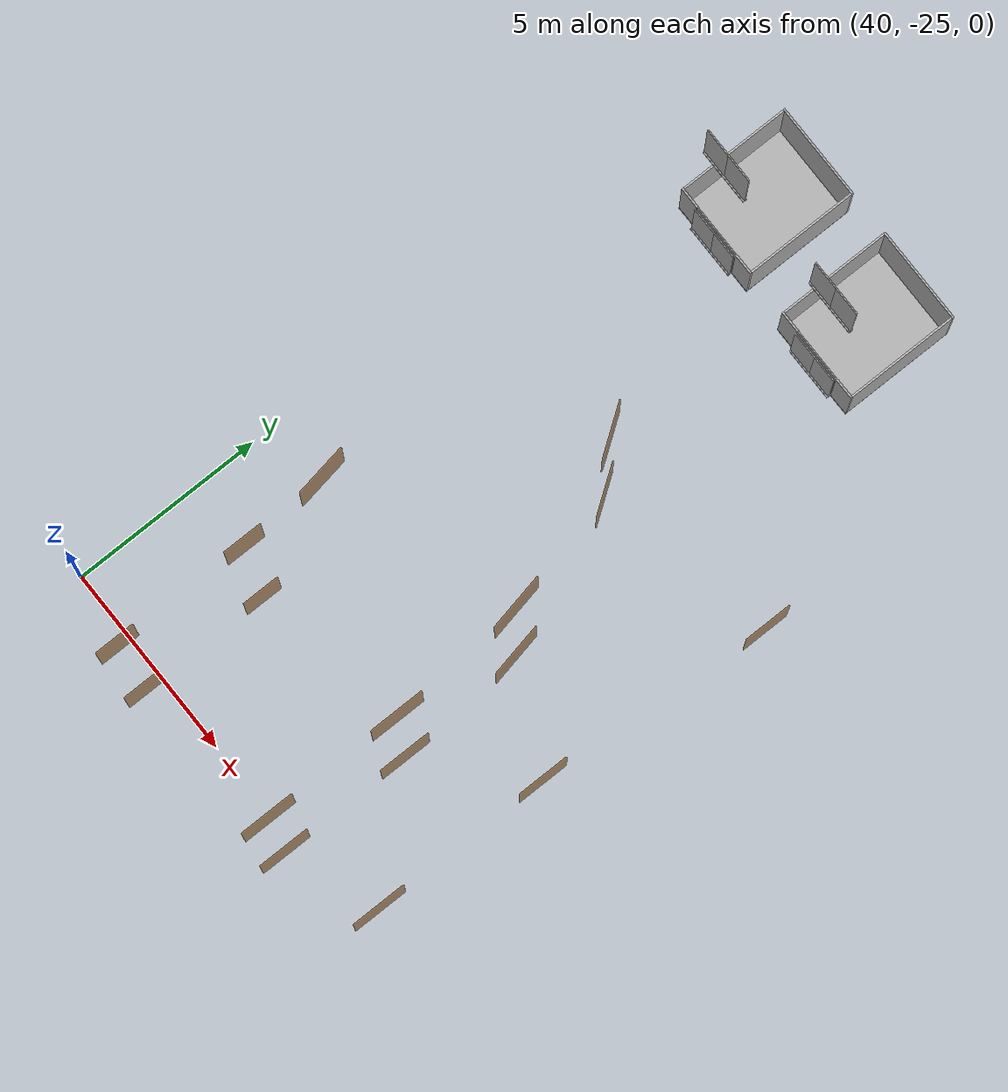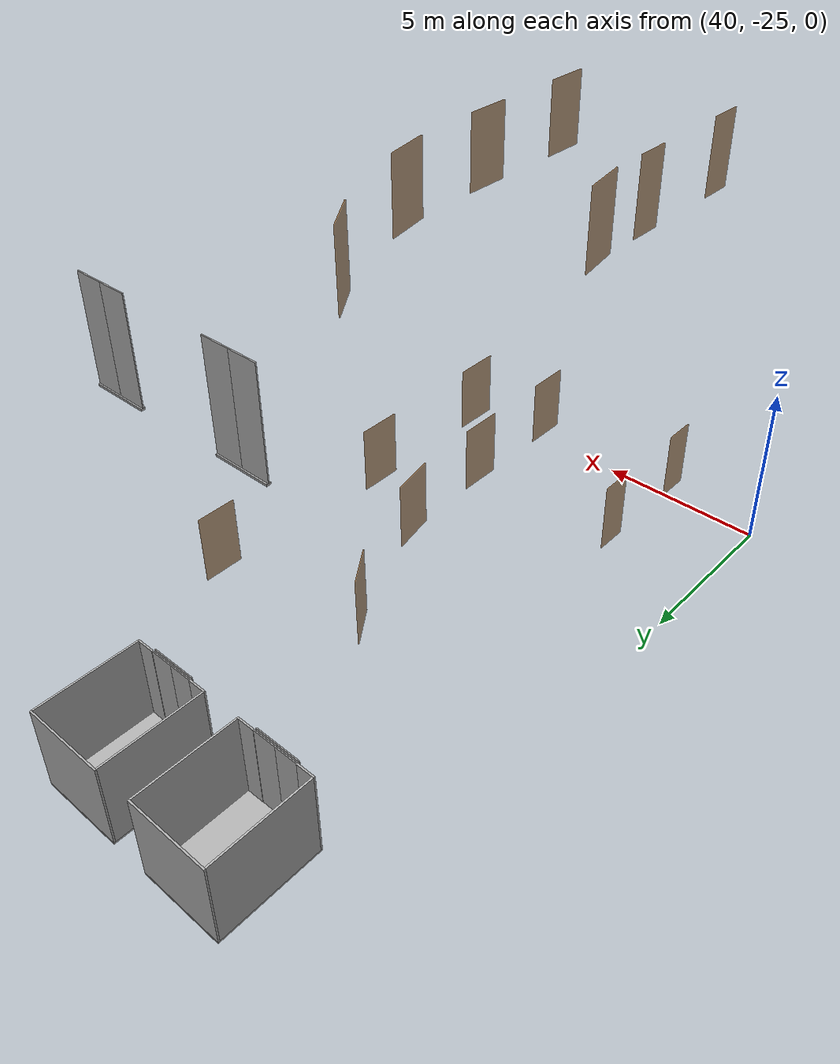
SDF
<sdf version="1.7">
 <world name="sim_world">
  <model name="L1_right_consult_rm_1_outer">
   <pose>46.068297373178 -14.530337294719446 0.0 0 0 2.1863116312176896</pose>
   <static>true</static>
   <link name="right">
    <pose>0 0 1.11 0 0 0</pose>
    <visual name="right_visual">
     <geometry><box><size>1.3227213939192073 0.03 2.2</size></box></geometry>
     <material>
      <ambient>0.5 0.25 0 0.6</ambient>
      <diffuse>0.5 0.25 0 0.6</diffuse>
      <pbr><metal><metalness>0.0</metalness></metal></pbr>
     </material>
    </visual>
    <collision name="right_collision">
     <geometry><box><size>1.3227213939192073 0.03 2.2</size></box></geometry>
     <surface><contact><collide_bitmask>0x02</collide_bitmask></contact></surface>
    </collision>
    <inertial>
     <mass>50.0</mass>
     <inertia><ixx>20.17041666666667</ixx><iyy>27.456632858048216</iyy><izz>7.293716191381544</izz></inertia>
    </inertial>
   </link>
   <joint name="right_joint" type="prismatic">
    <parent>world</parent>
    <child>right</child>
    <axis>
     <xyz>1 0 0</xyz>
     <limit><lower>0.0</lower><upper>1.3327213939192073</upper><effort>500.0</effort></limit>
    </axis>
   </joint>
  </model>
  <model name="L1_right_consult_rm_2_outer">
   <pose>47.68885619783859 -18.3893427175878 0.0 0 0 1.769259662102772</pose>
   <static>true</static>
   <link name="right">
    <pose>0 0 1.11 0 0 0</pose>
    <visual name="right_visual">
     <geometry><box><size>1.409133850260675 0.03 2.2</size></box></geometry>
     <material>
      <ambient>0.5 0.25 0 0.6</ambient>
      <diffuse>0.5 0.25 0 0.6</diffuse>
      <pbr><metal><metalness>0.0</metalness></metal></pbr>
     </material>
    </visual>
    <collision name="right_collision">
     <geometry><box><size>1.409133850260675 0.03 2.2</size></box></geometry>
     <surface><contact><collide_bitmask>0x02</collide_bitmask></contact></surface>
    </collision>
    <inertial>
     <mass>50.0</mass>
     <inertia><ixx>20.17041666666667</ixx><iyy>28.440242533126984</iyy><izz>8.277325866460309</izz></inertia>
    </inertial>
   </link>
   <joint name="right_joint" type="prismatic">
    <parent>world</parent>
    <child>right</child>
    <axis>
     <xyz>1 0 0</xyz>
     <limit><lower>0.0</lower><upper>1.419133850260675</upper><effort>500.0</effort></limit>
    </axis>
   </joint>
  </model>
  <model name="L1_right_consult_rm_3_outer">
   <pose>47.92979500788435 -21.793661782239163 0.0 0 0 1.5707963267948966</pose>
   <static>true</static>
   <link name="right">
    <pose>0 0 1.11 0 0 0</pose>
    <visual name="right_visual">
     <geometry><box><size>1.3657163186031285 0.03 2.2</size></box></geometry>
     <material>
      <ambient>0.5 0.25 0 0.6</ambient>
      <diffuse>0.5 0.25 0 0.6</diffuse>
      <pbr><metal><metalness>0.0</metalness></metal></pbr>
     </material>
    </visual>
    <collision name="right_collision">
     <geometry><box><size>1.3657163186031285 0.03 2.2</size></box></geometry>
     <surface><contact><collide_bitmask>0x02</collide_bitmask></contact></surface>
    </collision>
    <inertial>
     <mass>50.0</mass>
     <inertia><ixx>20.17041666666667</ixx><iyy>27.938254428745346</iyy><izz>7.775337762078674</izz></inertia>
    </inertial>
   </link>
   <joint name="right_joint" type="prismatic">
    <parent>world</parent>
    <child>right</child>
    <axis>
     <xyz>1 0 0</xyz>
     <limit><lower>0.0</lower><upper>1.3757163186031285</upper><effort>500.0</effort></limit>
    </axis>
   </joint>
  </model>
  <model name="L1_right_consult_rm_4_outer">
   <pose>47.92979500788435 -25.260170762662995 0.0 0 0 1.5707963267948966</pose>
   <static>true</static>
   <link name="right">
    <pose>0 0 1.11 0 0 0</pose>
    <visual name="right_visual">
     <geometry><box><size>1.3501553786392877 0.03 2.2</size></box></geometry>
     <material>
      <ambient>0.5 0.25 0 0.6</ambient>
      <diffuse>0.5 0.25 0 0.6</diffuse>
      <pbr><metal><metalness>0.0</metalness></metal></pbr>
     </material>
    </visual>
    <collision name="right_collision">
     <geometry><box><size>1.3501553786392877 0.03 2.2</size></box></geometry>
     <surface><contact><collide_bitmask>0x02</collide_bitmask></contact></surface>
    </collision>
    <inertial>
     <mass>50.0</mass>
     <inertia><ixx>20.17041666666667</ixx><iyy>27.762164776952496</iyy><izz>7.599248110285827</izz></inertia>
    </inertial>
   </link>
   <joint name="right_joint" type="prismatic">
    <parent>world</parent>
    <child>right</child>
    <axis>
     <xyz>1 0 0</xyz>
     <limit><lower>0.0</lower><upper>1.3601553786392877</upper><effort>500.0</effort></limit>
    </axis>
   </joint>
  </model>
  <model name="L1_right_procedure">
   <pose>50.74072535671709 -13.553592169531953 0.0 0 0 1.5707963267948966</pose>
   <link name="right">
    <pose>0 0 1.11 0 0 0</pose>
    <visual name="right_visual">
     <geometry><box><size>1.2479862312987977 0.03 2.2</size></box></geometry>
     <material>
      <ambient>0.5 0.25 0 0.6</ambient>
      <diffuse>0.5 0.25 0 0.6</diffuse>
      <pbr><metal><metalness>0.0</metalness></metal></pbr>
     </material>
    </visual>
    <collision name="right_collision">
     <geometry><box><size>1.2479862312987977 0.03 2.2</size></box></geometry>
     <surface><contact><collide_bitmask>0x02</collide_bitmask></contact></surface>
    </collision>
    <inertial>
     <mass>50.0</mass>
     <inertia><ixx>20.17041666666667</ixx><iyy>26.656123472964072</iyy><izz>6.493206806297401</izz></inertia>
    </inertial>
   </link>
   <joint name="right_joint" type="prismatic">
    <parent>world</parent>
    <child>right</child>
    <axis>
     <xyz>1 0 0</xyz>
     <limit><lower>0.0</lower><upper>1.2579862312987977</upper><effort>500.0</effort></limit>
    </axis>
   </joint>
   <plugin name="door" filename="libdoor.so">
    <v_max_door>0.2</v_max_door>
    <a_max_door>0.2</a_max_door>
    <a_nom_door>0.08</a_nom_door>
    <dx_min_door>0.001</dx_min_door>
    <f_max_door>100.0</f_max_door>
    <door name="L1_right_procedure" type="SlidingDoor" left_joint_name="empty_joint" right_joint_name="right_joint"/>
   </plugin>
  </model>
  <model name="L1_right_treatment">
   <pose>50.29120803046041 -19.682408368908906 0.0 0 0 1.5707963267948966</pose>
   <link name="right">
    <pose>0 0 1.11 0 0 0</pose>
    <visual name="right_visual">
     <geometry><box><size>1.3636702434521746 0.03 2.2</size></box></geometry>
     <material>
      <ambient>0.5 0.25 0 0.6</ambient>
      <diffuse>0.5 0.25 0 0.6</diffuse>
      <pbr><metal><metalness>0.0</metalness></metal></pbr>
     </material>
    </visual>
    <collision name="right_collision">
     <geometry><box><size>1.3636702434521746 0.03 2.2</size></box></geometry>
     <surface><contact><collide_bitmask>0x02</collide_bitmask></contact></surface>
    </collision>
    <inertial>
     <mass>50.0</mass>
     <inertia><ixx>20.17041666666667</ixx><iyy>27.91498555365381</iyy><izz>7.7520688869871375</izz></inertia>
    </inertial>
   </link>
   <joint name="right_joint" type="prismatic">
    <parent>world</parent>
    <child>right</child>
    <axis>
     <xyz>1 0 0</xyz>
     <limit><lower>0.0</lower><upper>1.3736702434521746</upper><effort>500.0</effort></limit>
    </axis>
   </joint>
   <plugin name="door" filename="libdoor.so">
    <v_max_door>0.2</v_max_door>
    <a_max_door>0.2</a_max_door>
    <a_nom_door>0.08</a_nom_door>
    <dx_min_door>0.001</dx_min_door>
    <f_max_door>100.0</f_max_door>
    <door name="L1_right_treatment" type="SlidingDoor" left_joint_name="empty_joint" right_joint_name="right_joint"/>
   </plugin>
  </model>
  <model name="L1_right_counsel">
   <pose>50.26705895927084 -24.383629475789412 0.0 0 0 1.5707224510909026</pose>
   <static>true</static>
   <link name="right">
    <pose>0 0 1.11 0 0 0</pose>
    <visual name="right_visual">
     <geometry><box><size>1.4476939388264292 0.03 2.2</size></box></geometry>
     <material>
      <ambient>0.5 0.25 0 0.6</ambient>
      <diffuse>0.5 0.25 0 0.6</diffuse>
      <pbr><metal><metalness>0.0</metalness></metal></pbr>
     </material>
    </visual>
    <collision name="right_collision">
     <geometry><box><size>1.4476939388264292 0.03 2.2</size></box></geometry>
     <surface><contact><collide_bitmask>0x02</collide_bitmask></contact></surface>
    </collision>
    <inertial>
     <mass>50.0</mass>
     <inertia><ixx>20.17041666666667</ixx><iyy>28.89924058547826</iyy><izz>8.736323918811587</izz></inertia>
    </inertial>
   </link>
   <joint name="right_joint" type="prismatic">
    <parent>world</parent>
    <child>right</child>
    <axis>
     <xyz>1 0 0</xyz>
     <limit><lower>0.0</lower><upper>1.4576939388264292</upper><effort>500.0</effort></limit>
    </axis>
   </joint>
  </model>
  <model name="L1_right_consult_rm_4_inner">
   <pose>43.04524825968236 -25.4842832967963 0.0 0 0 -1.5707963267948966</pose>
   <static>true</static>
   <link name="right">
    <pose>0 0 1.11 0 0 0</pose>
    <visual name="right_visual">
     <geometry><box><size>1.0004111380331524 0.03 2.2</size></box></geometry>
     <material>
      <ambient>0.5 0.25 0 0.6</ambient>
      <diffuse>0.5 0.25 0 0.6</diffuse>
      <pbr><metal><metalness>0.0</metalness></metal></pbr>
     </material>
    </visual>
    <collision name="right_collision">
     <geometry><box><size>1.0004111380331524 0.03 2.2</size></box></geometry>
     <surface><contact><collide_bitmask>0x02</collide_bitmask></contact></surface>
    </collision>
    <inertial>
     <mass>50.0</mass>
     <inertia><ixx>20.17041666666667</ixx><iyy>24.33676018791995</iyy><izz>4.17384352125328</izz></inertia>
    </inertial>
   </link>
   <joint name="right_joint" type="prismatic">
    <parent>world</parent>
    <child>right</child>
    <axis>
     <xyz>1 0 0</xyz>
     <limit><lower>0.0</lower><upper>1.0104111380331524</upper><effort>500.0</effort></limit>
    </axis>
   </joint>
  </model>
  <model name="L1_right_consult_rm_3_inner">
   <pose>43.04524825968236 -22.06440329218109 0.0 0 0 -1.5707963267948966</pose>
   <static>true</static>
   <link name="right">
    <pose>0 0 1.11 0 0 0</pose>
    <visual name="right_visual">
     <geometry><box><size>0.9831271874158689 0.03 2.2</size></box></geometry>
     <material>
      <ambient>0.5 0.25 0 0.6</ambient>
      <diffuse>0.5 0.25 0 0.6</diffuse>
      <pbr><metal><metalness>0.0</metalness></metal></pbr>
     </material>
    </visual>
    <collision name="right_collision">
     <geometry><box><size>0.9831271874158689 0.03 2.2</size></box></geometry>
     <surface><contact><collide_bitmask>0x02</collide_bitmask></contact></surface>
    </collision>
    <inertial>
     <mass>50.0</mass>
     <inertia><ixx>20.17041666666667</ixx><iyy>24.193912777650993</iyy><izz>4.030996110984321</izz></inertia>
    </inertial>
   </link>
   <joint name="right_joint" type="prismatic">
    <parent>world</parent>
    <child>right</child>
    <axis>
     <xyz>1 0 0</xyz>
     <limit><lower>0.0</lower><upper>0.9931271874158689</upper><effort>500.0</effort></limit>
    </axis>
   </joint>
  </model>
  <model name="L2_right_consult_rm_1_outer">
   <pose>46.068297373178 -14.530337294719446 10.0 0 0 2.1863116312176896</pose>
   <static>true</static>
   <link name="right">
    <pose>0 0 1.11 0 0 0</pose>
    <visual name="right_visual">
     <geometry><box><size>1.3227213939192073 0.03 2.2</size></box></geometry>
     <material>
      <ambient>0.5 0.25 0 0.6</ambient>
      <diffuse>0.5 0.25 0 0.6</diffuse>
      <pbr><metal><metalness>0.0</metalness></metal></pbr>
     </material>
    </visual>
    <collision name="right_collision">
     <geometry><box><size>1.3227213939192073 0.03 2.2</size></box></geometry>
     <surface><contact><collide_bitmask>0x02</collide_bitmask></contact></surface>
    </collision>
    <inertial>
     <mass>50.0</mass>
     <inertia><ixx>20.17041666666667</ixx><iyy>27.456632858048216</iyy><izz>7.293716191381544</izz></inertia>
    </inertial>
   </link>
   <joint name="right_joint" type="prismatic">
    <parent>world</parent>
    <child>right</child>
    <axis>
     <xyz>1 0 0</xyz>
     <limit><lower>0.0</lower><upper>1.3327213939192073</upper><effort>500.0</effort></limit>
    </axis>
   </joint>
  </model>
  <model name="L2_right_consult_rm_2_outer">
   <pose>47.68885619783859 -18.3893427175878 10.0 0 0 1.769259662102772</pose>
   <static>true</static>
   <link name="right">
    <pose>0 0 1.11 0 0 0</pose>
    <visual name="right_visual">
     <geometry><box><size>1.409133850260675 0.03 2.2</size></box></geometry>
     <material>
      <ambient>0.5 0.25 0 0.6</ambient>
      <diffuse>0.5 0.25 0 0.6</diffuse>
      <pbr><metal><metalness>0.0</metalness></metal></pbr>
     </material>
    </visual>
    <collision name="right_collision">
     <geometry><box><size>1.409133850260675 0.03 2.2</size></box></geometry>
     <surface><contact><collide_bitmask>0x02</collide_bitmask></contact></surface>
    </collision>
    <inertial>
     <mass>50.0</mass>
     <inertia><ixx>20.17041666666667</ixx><iyy>28.440242533126984</iyy><izz>8.277325866460309</izz></inertia>
    </inertial>
   </link>
   <joint name="right_joint" type="prismatic">
    <parent>world</parent>
    <child>right</child>
    <axis>
     <xyz>1 0 0</xyz>
     <limit><lower>0.0</lower><upper>1.419133850260675</upper><effort>500.0</effort></limit>
    </axis>
   </joint>
  </model>
  <model name="L2_right_consult_rm_3_outer">
   <pose>47.92979500788435 -21.793661782239163 10.0 0 0 1.5707963267948966</pose>
   <static>true</static>
   <link name="right">
    <pose>0 0 1.11 0 0 0</pose>
    <visual name="right_visual">
     <geometry><box><size>1.3657163186031285 0.03 2.2</size></box></geometry>
     <material>
      <ambient>0.5 0.25 0 0.6</ambient>
      <diffuse>0.5 0.25 0 0.6</diffuse>
      <pbr><metal><metalness>0.0</metalness></metal></pbr>
     </material>
    </visual>
    <collision name="right_collision">
     <geometry><box><size>1.3657163186031285 0.03 2.2</size></box></geometry>
     <surface><contact><collide_bitmask>0x02</collide_bitmask></contact></surface>
    </collision>
    <inertial>
     <mass>50.0</mass>
     <inertia><ixx>20.17041666666667</ixx><iyy>27.938254428745346</iyy><izz>7.775337762078674</izz></inertia>
    </inertial>
   </link>
   <joint name="right_joint" type="prismatic">
    <parent>world</parent>
    <child>right</child>
    <axis>
     <xyz>1 0 0</xyz>
     <limit><lower>0.0</lower><upper>1.3757163186031285</upper><effort>500.0</effort></limit>
    </axis>
   </joint>
  </model>
  <model name="L2_right_consult_rm_4_outer">
   <pose>47.92979500788435 -25.260170762662995 10.0 0 0 1.5707963267948966</pose>
   <static>true</static>
   <link name="right">
    <pose>0 0 1.11 0 0 0</pose>
    <visual name="right_visual">
     <geometry><box><size>1.3501553786392877 0.03 2.2</size></box></geometry>
     <material>
      <ambient>0.5 0.25 0 0.6</ambient>
      <diffuse>0.5 0.25 0 0.6</diffuse>
      <pbr><metal><metalness>0.0</metalness></metal></pbr>
     </material>
    </visual>
    <collision name="right_collision">
     <geometry><box><size>1.3501553786392877 0.03 2.2</size></box></geometry>
     <surface><contact><collide_bitmask>0x02</collide_bitmask></contact></surface>
    </collision>
    <inertial>
     <mass>50.0</mass>
     <inertia><ixx>20.17041666666667</ixx><iyy>27.762164776952496</iyy><izz>7.599248110285827</izz></inertia>
    </inertial>
   </link>
   <joint name="right_joint" type="prismatic">
    <parent>world</parent>
    <child>right</child>
    <axis>
     <xyz>1 0 0</xyz>
     <limit><lower>0.0</lower><upper>1.3601553786392877</upper><effort>500.0</effort></limit>
    </axis>
   </joint>
  </model>
  <model name="L2_right_consult_rm_4_inner">
   <pose>43.04524825968236 -25.4842832967963 10.0 0 0 -1.5707963267948966</pose>
   <static>true</static>
   <link name="right">
    <pose>0 0 1.11 0 0 0</pose>
    <visual name="right_visual">
     <geometry><box><size>1.0004111380331524 0.03 2.2</size></box></geometry>
     <material>
      <ambient>0.5 0.25 0 0.6</ambient>
      <diffuse>0.5 0.25 0 0.6</diffuse>
      <pbr><metal><metalness>0.0</metalness></metal></pbr>
     </material>
    </visual>
    <collision name="right_collision">
     <geometry><box><size>1.0004111380331524 0.03 2.2</size></box></geometry>
     <surface><contact><collide_bitmask>0x02</collide_bitmask></contact></surface>
    </collision>
    <inertial>
     <mass>50.0</mass>
     <inertia><ixx>20.17041666666667</ixx><iyy>24.33676018791995</iyy><izz>4.17384352125328</izz></inertia>
    </inertial>
   </link>
   <joint name="right_joint" type="prismatic">
    <parent>world</parent>
    <child>right</child>
    <axis>
     <xyz>1 0 0</xyz>
     <limit><lower>0.0</lower><upper>1.0104111380331524</upper><effort>500.0</effort></limit>
    </axis>
   </joint>
  </model>
  <model name="L2_right_consult_rm_3_inner">
   <pose>43.04524825968236 -22.06440329218109 10.0 0 0 -1.5707963267948966</pose>
   <static>true</static>
   <link name="right">
    <pose>0 0 1.11 0 0 0</pose>
    <visual name="right_visual">
     <geometry><box><size>0.9831271874158689 0.03 2.2</size></box></geometry>
     <material>
      <ambient>0.5 0.25 0 0.6</ambient>
      <diffuse>0.5 0.25 0 0.6</diffuse>
      <pbr><metal><metalness>0.0</metalness></metal></pbr>
     </material>
    </visual>
    <collision name="right_collision">
     <geometry><box><size>0.9831271874158689 0.03 2.2</size></box></geometry>
     <surface><contact><collide_bitmask>0x02</collide_bitmask></contact></surface>
    </collision>
    <inertial>
     <mass>50.0</mass>
     <inertia><ixx>20.17041666666667</ixx><iyy>24.193912777650993</iyy><izz>4.030996110984321</izz></inertia>
    </inertial>
   </link>
   <joint name="right_joint" type="prismatic">
    <parent>world</parent>
    <child>right</child>
    <axis>
     <xyz>1 0 0</xyz>
     <limit><lower>0.0</lower><upper>0.9931271874158689</upper><effort>500.0</effort></limit>
    </axis>
   </joint>
  </model>
  <model name="L2_right_consult_rm_2_inner">
   <pose>42.93730433444871 -19.879491173416426 10.0 0 0 -1.4067292151199144</pose>
   <static>true</static>
   <link name="right">
    <pose>0 0 1.11 0 0 0</pose>
    <visual name="right_visual">
     <geometry><box><size>1.3117728040741947 0.03 2.2</size></box></geometry>
     <material>
      <ambient>0.5 0.25 0 0.6</ambient>
      <diffuse>0.5 0.25 0 0.6</diffuse>
      <pbr><metal><metalness>0.0</metalness></metal></pbr>
     </material>
    </visual>
    <collision name="right_collision">
     <geometry><box><size>1.3117728040741947 0.03 2.2</size></box></geometry>
     <surface><contact><collide_bitmask>0x02</collide_bitmask></contact></surface>
    </collision>
    <inertial>
     <mass>50.0</mass>
     <inertia><ixx>20.17041666666667</ixx><iyy>27.336449539619487</iyy><izz>7.173532872952816</izz></inertia>
    </inertial>
   </link>
   <joint name="right_joint" type="revolute">
    <parent>world</parent>
    <child>right</child>
    <axis><xyz>0 0 -1</xyz><limit><lower>0</lower><upper>1.57</upper></limit></axis>
    <pose>0.6608864020370974 0 0 0 0 0</pose>
   </joint>
  </model>
  <model name="ShaftDoor_lift_1_L1_lift_1_door">
   <pose>43.072797723889636 -8.980481477122195 0.0 0 0 3.14</pose>
   <link name="right_door">
    <pose>0.35 0 1.25 0 0 0</pose>
    <visual name="right_door_visual">
     <geometry><box><size>0.7 0.03 2.5</size></box></geometry>
     <material>
      <ambient>0.5 0.5 0.5 1</ambient>
      <diffuse>0.7 0.7 0.7 1</diffuse>
      <specular>0.6 0.6 0.6 1</specular>
      <emissive>0.1 0.1 0.1 1</emissive>
     </material>
    </visual>
    <collision name="right_door_collision">
     <geometry><box><size>0.7 0.03 2.5</size></box></geometry>
     <surface><contact><collide_bitmask>0x02</collide_bitmask></contact></surface>
    </collision>
   </link>
   <joint name="right_joint" type="prismatic">
    <parent>world</parent>
    <child>right_door</child>
    <axis><xyz>1 0 0</xyz><limit><lower>0</lower><upper>0.7</upper></limit></axis>
   </joint>
   <link name="left_door">
    <pose>-0.35 0 1.25 0 0 0</pose>
    <visual name="left_door_visual">
     <geometry><box><size>0.7 0.03 2.5</size></box></geometry>
     <material>
      <ambient>0.5 0.5 0.5 1</ambient>
      <diffuse>0.7 0.7 0.7 1</diffuse>
      <specular>0.6 0.6 0.6 1</specular>
      <emissive>0.1 0.1 0.1 1</emissive>
     </material>
    </visual>
    <collision name="left_door_collision">
     <geometry><box><size>0.7 0.03 2.5</size></box></geometry>
     <surface><contact><collide_bitmask>0x02</collide_bitmask></contact></surface>
    </collision>
   </link>
   <joint name="left_joint" type="prismatic">
    <parent>world</parent>
    <child>left_door</child>
    <axis><xyz>1 0 0</xyz><limit><lower>-0.7</lower><upper>0</upper></limit></axis>
   </joint>
   <link name="ramp">
    <pose>0 0 -0.025 0 0 0</pose>
    <visual name="ramp_visual">
     <geometry><box><size>1.4 0.1 0.05</size></box></geometry>
     <material>
      <ambient>0.5 0.5 0.5 1</ambient>
      <diffuse>0.7 0.7 0.7 1</diffuse>
      <specular>0.6 0.6 0.6 1</specular>
      <emissive>0.1 0.1 0.1 1</emissive>
     </material>
    </visual>
    <collision name="ramp_collision">
     <geometry><box><size>1.4 0.1 0.05</size></box></geometry>
     <surface><contact><collide_bitmask>0x02</collide_bitmask></contact></surface>
    </collision>
   </link>
   <joint name="ramp_joint" type="fixed"><parent>world</parent><child>ramp</child></joint>
   <plugin name="door" filename="libdoor.so">
    <v_max_door>0.3</v_max_door>
    <a_max_door>0.2</a_max_door>
    <a_nom_door>0.1</a_nom_door>
    <dx_min_door>0.0001</dx_min_door>
    <f_max_door>35.0</f_max_door>
    <door left_joint_name="left_joint" name="ShaftDoor_lift_1_L1_lift_1_door" right_joint_name="right_joint" type="DoubleSlidingDoor"/>
   </plugin>
  </model>
  <model name="ShaftDoor_lift_1_L2_lift_1_door">
   <pose>43.072797723889636 -8.980481477122195 10.0 0 0 3.14</pose>
   <link name="right_door">
    <pose>0.35 0 1.25 0 0 0</pose>
    <visual name="right_door_visual">
     <geometry><box><size>0.7 0.03 2.5</size></box></geometry>
     <material>
      <ambient>0.5 0.5 0.5 1</ambient>
      <diffuse>0.7 0.7 0.7 1</diffuse>
      <specular>0.6 0.6 0.6 1</specular>
      <emissive>0.1 0.1 0.1 1</emissive>
     </material>
    </visual>
    <collision name="right_door_collision">
     <geometry><box><size>0.7 0.03 2.5</size></box></geometry>
     <surface><contact><collide_bitmask>0x02</collide_bitmask></contact></surface>
    </collision>
   </link>
   <joint name="right_joint" type="prismatic">
    <parent>world</parent>
    <child>right_door</child>
    <axis><xyz>1 0 0</xyz><limit><lower>0</lower><upper>0.7</upper></limit></axis>
   </joint>
   <link name="left_door">
    <pose>-0.35 0 1.25 0 0 0</pose>
    <visual name="left_door_visual">
     <geometry><box><size>0.7 0.03 2.5</size></box></geometry>
     <material>
      <ambient>0.5 0.5 0.5 1</ambient>
      <diffuse>0.7 0.7 0.7 1</diffuse>
      <specular>0.6 0.6 0.6 1</specular>
      <emissive>0.1 0.1 0.1 1</emissive>
     </material>
    </visual>
    <collision name="left_door_collision">
     <geometry><box><size>0.7 0.03 2.5</size></box></geometry>
     <surface><contact><collide_bitmask>0x02</collide_bitmask></contact></surface>
    </collision>
   </link>
   <joint name="left_joint" type="prismatic">
    <parent>world</parent>
    <child>left_door</child>
    <axis><xyz>1 0 0</xyz><limit><lower>-0.7</lower><upper>0</upper></limit></axis>
   </joint>
   <link name="ramp">
    <pose>0 0 -0.025 0 0 0</pose>
    <visual name="ramp_visual">
     <geometry><box><size>1.4 0.1 0.05</size></box></geometry>
     <material>
      <ambient>0.5 0.5 0.5 1</ambient>
      <diffuse>0.7 0.7 0.7 1</diffuse>
      <specular>0.6 0.6 0.6 1</specular>
      <emissive>0.1 0.1 0.1 1</emissive>
     </material>
    </visual>
    <collision name="ramp_collision">
     <geometry><box><size>1.4 0.1 0.05</size></box></geometry>
     <surface><contact><collide_bitmask>0x02</collide_bitmask></contact></surface>
    </collision>
   </link>
   <joint name="ramp_joint" type="fixed"><parent>world</parent><child>ramp</child></joint>
   <plugin name="door" filename="libdoor.so">
    <v_max_door>0.3</v_max_door>
    <a_max_door>0.2</a_max_door>
    <a_nom_door>0.1</a_nom_door>
    <dx_min_door>0.0001</dx_min_door>
    <f_max_door>35.0</f_max_door>
    <door left_joint_name="left_joint" name="ShaftDoor_lift_1_L2_lift_1_door" right_joint_name="right_joint" type="DoubleSlidingDoor"/>
   </plugin>
  </model>
  <model name="lift_1">
   <link name="platform">
    <inertial><mass>1200</mass><inertia><ixx>625.25</ixx><iyy>900.25</iyy><izz>1525.0</izz></inertia></inertial>
    <visual name="floor_visual">
     <pose>0 0 -0.025 0 0 0</pose>
     <geometry><box><size>2.5 3.0 0.05</size></box></geometry>
     <material>
      <ambient>0.5 0.5 0.5 1</ambient>
      <diffuse>0.7 0.7 0.7 1</diffuse>
      <specular>0.6 0.6 0.6 1</specular>
      <emissive>0.1 0.1 0.1 1</emissive>
     </material>
    </visual>
    <collision name="floor_collision">
     <pose>0 0 -0.025 0 0 0</pose>
     <geometry><box><size>2.5 3.0 0.05</size></box></geometry>
     <surface><contact><collide_bitmask>0x01</collide_bitmask></contact></surface>
    </collision>
    <visual name="frontwall1_visual">
     <pose>-0.975 1.475 1.25 0 0 0</pose>
     <geometry><box><size>0.55 0.05 2.5</size></box></geometry>
     <material>
      <ambient>0.5 0.5 0.5 1</ambient>
      <diffuse>0.7 0.7 0.7 1</diffuse>
      <specular>0.6 0.6 0.6 1</specular>
      <emissive>0.1 0.1 0.1 1</emissive>
     </material>
    </visual>
    <collision name="frontwall1_collision">
     <pose>-0.975 1.475 1.25 0 0 0</pose>
     <geometry><box><size>0.55 0.05 2.5</size></box></geometry>
     <surface><contact><collide_bitmask>0x01</collide_bitmask></contact></surface>
    </collision>
    <visual name="frontwall2_visual">
     <pose>0.975 1.475 1.25 0 0 0</pose>
     <geometry><box><size>0.55 0.05 2.5</size></box></geometry>
     <material>
      <ambient>0.5 0.5 0.5 1</ambient>
      <diffuse>0.7 0.7 0.7 1</diffuse>
      <specular>0.6 0.6 0.6 1</specular>
      <emissive>0.1 0.1 0.1 1</emissive>
     </material>
    </visual>
    <collision name="frontwall2_collision">
     <pose>0.975 1.475 1.25 0 0 0</pose>
     <geometry><box><size>0.55 0.05 2.5</size></box></geometry>
     <surface><contact><collide_bitmask>0x01</collide_bitmask></contact></surface>
    </collision>
    <visual name="backwall1_visual">
     <pose>0.0 -1.475 1.25 0 0 0</pose>
     <geometry><box><size>2.5 0.05 2.5</size></box></geometry>
     <material>
      <ambient>0.5 0.5 0.5 1</ambient>
      <diffuse>0.7 0.7 0.7 1</diffuse>
      <specular>0.6 0.6 0.6 1</specular>
      <emissive>0.1 0.1 0.1 1</emissive>
     </material>
    </visual>
    <collision name="backwall1_collision">
     <pose>0.0 -1.475 1.25 0 0 0</pose>
     <geometry><box><size>2.5 0.05 2.5</size></box></geometry>
     <surface><contact><collide_bitmask>0x01</collide_bitmask></contact></surface>
    </collision>
    <visual name="leftwall1_visual">
     <pose>-1.225 0.0 1.25 0 0 1.5707963267948966</pose>
     <geometry><box><size>2.9 0.05 2.5</size></box></geometry>
     <material>
      <ambient>0.5 0.5 0.5 1</ambient>
      <diffuse>0.7 0.7 0.7 1</diffuse>
      <specular>0.6 0.6 0.6 1</specular>
      <emissive>0.1 0.1 0.1 1</emissive>
     </material>
    </visual>
    <collision name="leftwall1_collision">
     <pose>-1.225 0.0 1.25 0 0 1.5707963267948966</pose>
     <geometry><box><size>2.9 0.05 2.5</size></box></geometry>
     <surface><contact><collide_bitmask>0x01</collide_bitmask></contact></surface>
    </collision>
    <visual name="rightwall1_visual">
     <pose>1.225 0.0 1.25 0 0 1.5707963267948966</pose>
     <geometry><box><size>2.9 0.05 2.5</size></box></geometry>
     <material>
      <ambient>0.5 0.5 0.5 1</ambient>
      <diffuse>0.7 0.7 0.7 1</diffuse>
      <specular>0.6 0.6 0.6 1</specular>
      <emissive>0.1 0.1 0.1 1</emissive>
     </material>
    </visual>
    <collision name="rightwall1_collision">
     <pose>1.225 0.0 1.25 0 0 1.5707963267948966</pose>
     <geometry><box><size>2.9 0.05 2.5</size></box></geometry>
     <surface><contact><collide_bitmask>0x01</collide_bitmask></contact></surface>
    </collision>
   </link>
   <joint name="cabin_joint" type="prismatic">
    <parent>world</parent>
    <child>platform</child>
    <axis><xyz>0 0 1</xyz></axis>
   </joint>
   <link name="CabinDoor_lift_1_lift_1_door_right_door">
    <pose>0.35 1.475 1.25 0 0 0.0</pose>
    <visual name="CabinDoor_lift_1_lift_1_door_right_door_visual">
     <geometry><box><size>0.7 0.03 2.5</size></box></geometry>
     <material>
      <ambient>0.5 0.5 0.5 1</ambient>
      <diffuse>0.7 0.7 0.7 1</diffuse>
      <specular>0.6 0.6 0.6 1</specular>
      <emissive>0.1 0.1 0.1 1</emissive>
     </material>
    </visual>
    <collision name="CabinDoor_lift_1_lift_1_door_right_door_collision">
     <geometry><box><size>0.7 0.03 2.5</size></box></geometry>
     <surface><contact><collide_bitmask>0x02</collide_bitmask></contact></surface>
    </collision>
   </link>
   <joint name="CabinDoor_lift_1_lift_1_door_right_joint" type="prismatic">
    <parent>platform</parent>
    <child>CabinDoor_lift_1_lift_1_door_right_door</child>
    <axis><xyz>1 0 0</xyz><limit><lower>0</lower><upper>0.7</upper></limit></axis>
   </joint>
   <link name="CabinDoor_lift_1_lift_1_door_left_door">
    <pose>-0.35 1.475 1.25 0 0 0.0</pose>
    <visual name="CabinDoor_lift_1_lift_1_door_left_door_visual">
     <geometry><box><size>0.7 0.03 2.5</size></box></geometry>
     <material>
      <ambient>0.5 0.5 0.5 1</ambient>
      <diffuse>0.7 0.7 0.7 1</diffuse>
      <specular>0.6 0.6 0.6 1</specular>
      <emissive>0.1 0.1 0.1 1</emissive>
     </material>
    </visual>
    <collision name="CabinDoor_lift_1_lift_1_door_left_door_collision">
     <geometry><box><size>0.7 0.03 2.5</size></box></geometry>
     <surface><contact><collide_bitmask>0x02</collide_bitmask></contact></surface>
    </collision>
   </link>
   <joint name="CabinDoor_lift_1_lift_1_door_left_joint" type="prismatic">
    <parent>platform</parent>
    <child>CabinDoor_lift_1_lift_1_door_left_door</child>
    <axis><xyz>1 0 0</xyz><limit><lower>-0.7</lower><upper>0</upper></limit></axis>
   </joint>
   <plugin name="door" filename="libdoor.so">
    <v_max_door>0.3</v_max_door>
    <a_max_door>0.2</a_max_door>
    <a_nom_door>0.1</a_nom_door>
    <dx_min_door>0.0001</dx_min_door>
    <f_max_door>35.0</f_max_door>
    <door left_joint_name="CabinDoor_lift_1_lift_1_door_left_joint" name="CabinDoor_lift_1_lift_1_door" right_joint_name="CabinDoor_lift_1_lift_1_door_right_joint" type="DoubleSlidingDoor"/>
   </plugin>
   <plugin name="lift" filename="liblift.so">
    <lift_name>lift_1</lift_name>
    <floor name="L1" elevation="0.0">
     <door_pair cabin_door="CabinDoor_lift_1_lift_1_door" shaft_door="ShaftDoor_lift_1_L1_lift_1_door"/>
    </floor>
    <floor name="L2" elevation="10.0">
     <door_pair cabin_door="CabinDoor_lift_1_lift_1_door" shaft_door="ShaftDoor_lift_1_L2_lift_1_door"/>
    </floor>
    <initial_floor>L1</initial_floor>
    <v_max_cabin>2.0</v_max_cabin>
    <a_max_cabin>1.2</a_max_cabin>
    <a_nom_cabin>1.0</a_nom_cabin>
    <dx_min_cabin>0.001</dx_min_cabin>
    <f_max_cabin>25323.0</f_max_cabin>
    <cabin_joint_name>cabin_joint</cabin_joint_name>
   </plugin>
   <pose>43.07526633591019 -7.430483442944508 0 0 0 3.14</pose>
  </model>
  <model name="ShaftDoor_lift_2_L1_name">
   <pose>46.70727332098206 -8.980481477122195 0.0 0 0 3.14</pose>
   <link name="right_door">
    <pose>0.35 0 1.25 0 0 0</pose>
    <visual name="right_door_visual">
     <geometry><box><size>0.7 0.03 2.5</size></box></geometry>
     <material>
      <ambient>0.5 0.5 0.5 1</ambient>
      <diffuse>0.7 0.7 0.7 1</diffuse>
      <specular>0.6 0.6 0.6 1</specular>
      <emissive>0.1 0.1 0.1 1</emissive>
     </material>
    </visual>
    <collision name="right_door_collision">
     <geometry><box><size>0.7 0.03 2.5</size></box></geometry>
     <surface><contact><collide_bitmask>0x02</collide_bitmask></contact></surface>
    </collision>
   </link>
   <joint name="right_joint" type="prismatic">
    <parent>world</parent>
    <child>right_door</child>
    <axis><xyz>1 0 0</xyz><limit><lower>0</lower><upper>0.7</upper></limit></axis>
   </joint>
   <link name="left_door">
    <pose>-0.35 0 1.25 0 0 0</pose>
    <visual name="left_door_visual">
     <geometry><box><size>0.7 0.03 2.5</size></box></geometry>
     <material>
      <ambient>0.5 0.5 0.5 1</ambient>
      <diffuse>0.7 0.7 0.7 1</diffuse>
      <specular>0.6 0.6 0.6 1</specular>
      <emissive>0.1 0.1 0.1 1</emissive>
     </material>
    </visual>
    <collision name="left_door_collision">
     <geometry><box><size>0.7 0.03 2.5</size></box></geometry>
     <surface><contact><collide_bitmask>0x02</collide_bitmask></contact></surface>
    </collision>
   </link>
   <joint name="left_joint" type="prismatic">
    <parent>world</parent>
    <child>left_door</child>
    <axis><xyz>1 0 0</xyz><limit><lower>-0.7</lower><upper>0</upper></limit></axis>
   </joint>
   <link name="ramp">
    <pose>0 0 -0.025 0 0 0</pose>
    <visual name="ramp_visual">
     <geometry><box><size>1.4 0.1 0.05</size></box></geometry>
     <material>
      <ambient>0.5 0.5 0.5 1</ambient>
      <diffuse>0.7 0.7 0.7 1</diffuse>
      <specular>0.6 0.6 0.6 1</specular>
      <emissive>0.1 0.1 0.1 1</emissive>
     </material>
    </visual>
    <collision name="ramp_collision">
     <geometry><box><size>1.4 0.1 0.05</size></box></geometry>
     <surface><contact><collide_bitmask>0x02</collide_bitmask></contact></surface>
    </collision>
   </link>
   <joint name="ramp_joint" type="fixed"><parent>world</parent><child>ramp</child></joint>
  </model>
  <model name="ShaftDoor_lift_2_L2_name">
   <pose>46.70727332098206 -8.980481477122195 10.0 0 0 3.14</pose>
   <link name="right_door">
    <pose>0.35 0 1.25 0 0 0</pose>
    <visual name="right_door_visual">
     <geometry><box><size>0.7 0.03 2.5</size></box></geometry>
     <material>
      <ambient>0.5 0.5 0.5 1</ambient>
      <diffuse>0.7 0.7 0.7 1</diffuse>
      <specular>0.6 0.6 0.6 1</specular>
      <emissive>0.1 0.1 0.1 1</emissive>
     </material>
    </visual>
    <collision name="right_door_collision">
     <geometry><box><size>0.7 0.03 2.5</size></box></geometry>
     <surface><contact><collide_bitmask>0x02</collide_bitmask></contact></surface>
    </collision>
   </link>
   <joint name="right_joint" type="prismatic">
    <parent>world</parent>
    <child>right_door</child>
    <axis><xyz>1 0 0</xyz><limit><lower>0</lower><upper>0.7</upper></limit></axis>
   </joint>
   <link name="left_door">
    <pose>-0.35 0 1.25 0 0 0</pose>
    <visual name="left_door_visual">
     <geometry><box><size>0.7 0.03 2.5</size></box></geometry>
     <material>
      <ambient>0.5 0.5 0.5 1</ambient>
      <diffuse>0.7 0.7 0.7 1</diffuse>
      <specular>0.6 0.6 0.6 1</specular>
      <emissive>0.1 0.1 0.1 1</emissive>
     </material>
    </visual>
    <collision name="left_door_collision">
     <geometry><box><size>0.7 0.03 2.5</size></box></geometry>
     <surface><contact><collide_bitmask>0x02</collide_bitmask></contact></surface>
    </collision>
   </link>
   <joint name="left_joint" type="prismatic">
    <parent>world</parent>
    <child>left_door</child>
    <axis><xyz>1 0 0</xyz><limit><lower>-0.7</lower><upper>0</upper></limit></axis>
   </joint>
   <link name="ramp">
    <pose>0 0 -0.025 0 0 0</pose>
    <visual name="ramp_visual">
     <geometry><box><size>1.4 0.1 0.05</size></box></geometry>
     <material>
      <ambient>0.5 0.5 0.5 1</ambient>
      <diffuse>0.7 0.7 0.7 1</diffuse>
      <specular>0.6 0.6 0.6 1</specular>
      <emissive>0.1 0.1 0.1 1</emissive>
     </material>
    </visual>
    <collision name="ramp_collision">
     <geometry><box><size>1.4 0.1 0.05</size></box></geometry>
     <surface><contact><collide_bitmask>0x02</collide_bitmask></contact></surface>
    </collision>
   </link>
   <joint name="ramp_joint" type="fixed"><parent>world</parent><child>ramp</child></joint>
  </model>
  <model name="lift_2">
   <link name="platform">
    <inertial><mass>1200</mass><inertia><ixx>625.25</ixx><iyy>900.25</iyy><izz>1525.0</izz></inertia></inertial>
    <visual name="floor_visual">
     <pose>0 0 -0.025 0 0 0</pose>
     <geometry><box><size>2.5 3.0 0.05</size></box></geometry>
     <material>
      <ambient>0.5 0.5 0.5 1</ambient>
      <diffuse>0.7 0.7 0.7 1</diffuse>
      <specular>0.6 0.6 0.6 1</specular>
      <emissive>0.1 0.1 0.1 1</emissive>
     </material>
    </visual>
    <collision name="floor_collision">
     <pose>0 0 -0.025 0 0 0</pose>
     <geometry><box><size>2.5 3.0 0.05</size></box></geometry>
     <surface><contact><collide_bitmask>0x01</collide_bitmask></contact></surface>
    </collision>
    <visual name="frontwall1_visual">
     <pose>-0.975 1.475 1.25 0 0 0</pose>
     <geometry><box><size>0.55 0.05 2.5</size></box></geometry>
     <material>
      <ambient>0.5 0.5 0.5 1</ambient>
      <diffuse>0.7 0.7 0.7 1</diffuse>
      <specular>0.6 0.6 0.6 1</specular>
      <emissive>0.1 0.1 0.1 1</emissive>
     </material>
    </visual>
    <collision name="frontwall1_collision">
     <pose>-0.975 1.475 1.25 0 0 0</pose>
     <geometry><box><size>0.55 0.05 2.5</size></box></geometry>
     <surface><contact><collide_bitmask>0x01</collide_bitmask></contact></surface>
    </collision>
    <visual name="frontwall2_visual">
     <pose>0.975 1.475 1.25 0 0 0</pose>
     <geometry><box><size>0.55 0.05 2.5</size></box></geometry>
     <material>
      <ambient>0.5 0.5 0.5 1</ambient>
      <diffuse>0.7 0.7 0.7 1</diffuse>
      <specular>0.6 0.6 0.6 1</specular>
      <emissive>0.1 0.1 0.1 1</emissive>
     </material>
    </visual>
    <collision name="frontwall2_collision">
     <pose>0.975 1.475 1.25 0 0 0</pose>
     <geometry><box><size>0.55 0.05 2.5</size></box></geometry>
     <surface><contact><collide_bitmask>0x01</collide_bitmask></contact></surface>
    </collision>
    <visual name="backwall1_visual">
     <pose>0.0 -1.475 1.25 0 0 0</pose>
     <geometry><box><size>2.5 0.05 2.5</size></box></geometry>
     <material>
      <ambient>0.5 0.5 0.5 1</ambient>
      <diffuse>0.7 0.7 0.7 1</diffuse>
      <specular>0.6 0.6 0.6 1</specular>
      <emissive>0.1 0.1 0.1 1</emissive>
     </material>
    </visual>
    <collision name="backwall1_collision">
     <pose>0.0 -1.475 1.25 0 0 0</pose>
     <geometry><box><size>2.5 0.05 2.5</size></box></geometry>
     <surface><contact><collide_bitmask>0x01</collide_bitmask></contact></surface>
    </collision>
    <visual name="leftwall1_visual">
     <pose>-1.225 0.0 1.25 0 0 1.5707963267948966</pose>
     <geometry><box><size>2.9 0.05 2.5</size></box></geometry>
     <material>
      <ambient>0.5 0.5 0.5 1</ambient>
      <diffuse>0.7 0.7 0.7 1</diffuse>
      <specular>0.6 0.6 0.6 1</specular>
      <emissive>0.1 0.1 0.1 1</emissive>
     </material>
    </visual>
    <collision name="leftwall1_collision">
     <pose>-1.225 0.0 1.25 0 0 1.5707963267948966</pose>
     <geometry><box><size>2.9 0.05 2.5</size></box></geometry>
     <surface><contact><collide_bitmask>0x01</collide_bitmask></contact></surface>
    </collision>
    <visual name="rightwall1_visual">
     <pose>1.225 0.0 1.25 0 0 1.5707963267948966</pose>
     <geometry><box><size>2.9 0.05 2.5</size></box></geometry>
     <material>
      <ambient>0.5 0.5 0.5 1</ambient>
      <diffuse>0.7 0.7 0.7 1</diffuse>
      <specular>0.6 0.6 0.6 1</specular>
      <emissive>0.1 0.1 0.1 1</emissive>
     </material>
    </visual>
    <collision name="rightwall1_collision">
     <pose>1.225 0.0 1.25 0 0 1.5707963267948966</pose>
     <geometry><box><size>2.9 0.05 2.5</size></box></geometry>
     <surface><contact><collide_bitmask>0x01</collide_bitmask></contact></surface>
    </collision>
   </link>
   <joint name="cabin_joint" type="prismatic">
    <parent>world</parent>
    <child>platform</child>
    <axis><xyz>0 0 1</xyz></axis>
   </joint>
   <link name="CabinDoor_lift_2_name_right_door">
    <pose>0.35 1.475 1.25 0 0 0.0</pose>
    <visual name="CabinDoor_lift_2_name_right_door_visual">
     <geometry><box><size>0.7 0.03 2.5</size></box></geometry>
     <material>
      <ambient>0.5 0.5 0.5 1</ambient>
      <diffuse>0.7 0.7 0.7 1</diffuse>
      <specular>0.6 0.6 0.6 1</specular>
      <emissive>0.1 0.1 0.1 1</emissive>
     </material>
    </visual>
    <collision name="CabinDoor_lift_2_name_right_door_collision">
     <geometry><box><size>0.7 0.03 2.5</size></box></geometry>
     <surface><contact><collide_bitmask>0x02</collide_bitmask></contact></surface>
    </collision>
   </link>
   <joint name="CabinDoor_lift_2_name_right_joint" type="prismatic">
    <parent>platform</parent>
    <child>CabinDoor_lift_2_name_right_door</child>
    <axis><xyz>1 0 0</xyz><limit><lower>0</lower><upper>0.7</upper></limit></axis>
   </joint>
   <link name="CabinDoor_lift_2_name_left_door">
    <pose>-0.35 1.475 1.25 0 0 0.0</pose>
    <visual name="CabinDoor_lift_2_name_left_door_visual">
     <geometry><box><size>0.7 0.03 2.5</size></box></geometry>
     <material>
      <ambient>0.5 0.5 0.5 1</ambient>
      <diffuse>0.7 0.7 0.7 1</diffuse>
      <specular>0.6 0.6 0.6 1</specular>
      <emissive>0.1 0.1 0.1 1</emissive>
     </material>
    </visual>
    <collision name="CabinDoor_lift_2_name_left_door_collision">
     <geometry><box><size>0.7 0.03 2.5</size></box></geometry>
     <surface><contact><collide_bitmask>0x02</collide_bitmask></contact></surface>
    </collision>
   </link>
   <joint name="CabinDoor_lift_2_name_left_joint" type="prismatic">
    <parent>platform</parent>
    <child>CabinDoor_lift_2_name_left_door</child>
    <axis><xyz>1 0 0</xyz><limit><lower>-0.7</lower><upper>0</upper></limit></axis>
   </joint>
   <static>true</static>
   <pose>46.70974193300262 -7.430483442944508 0 0 0 3.14</pose>
  </model>
 </world>
</sdf>
